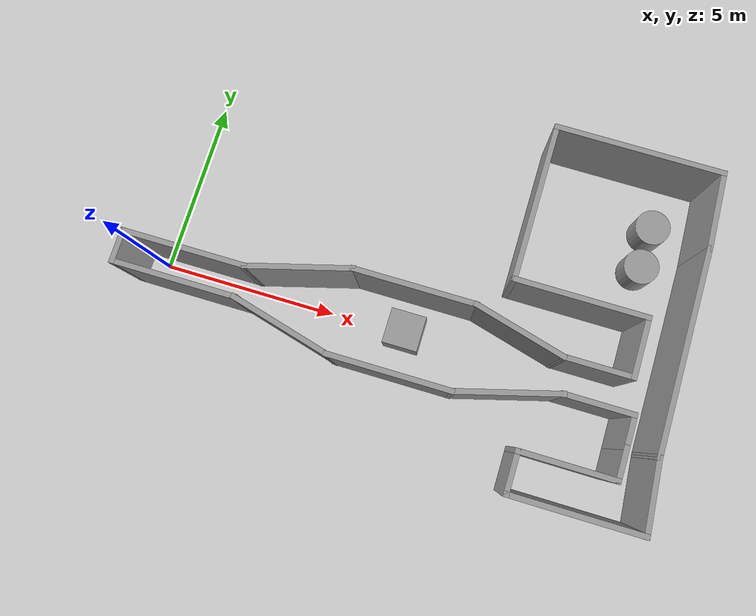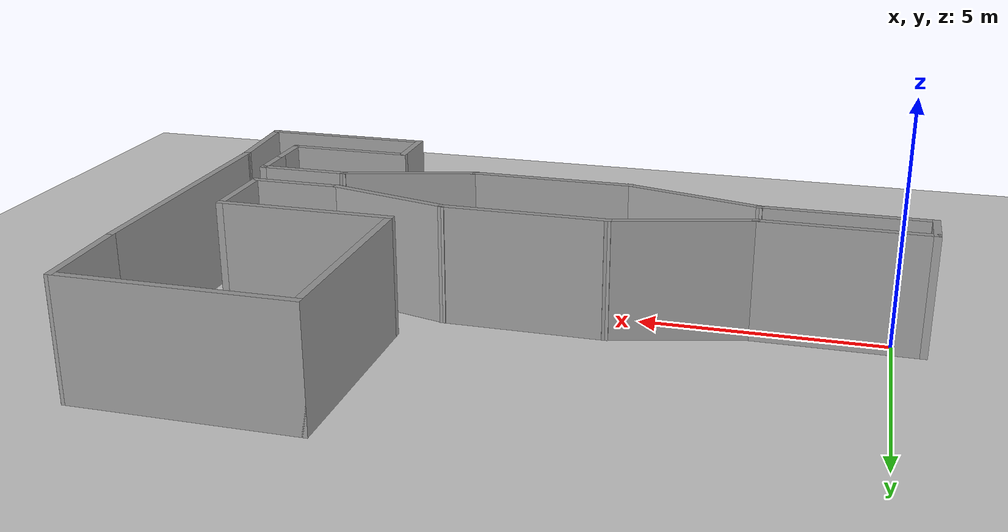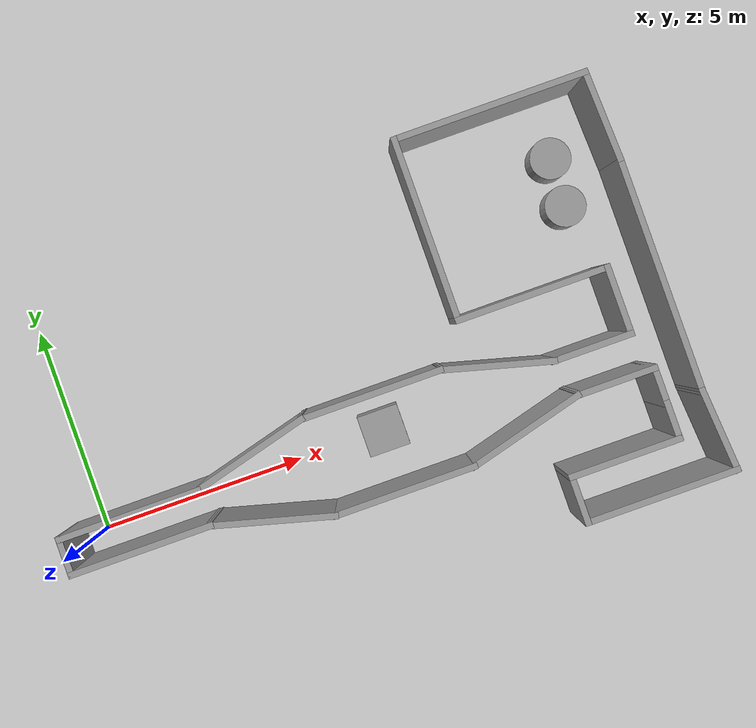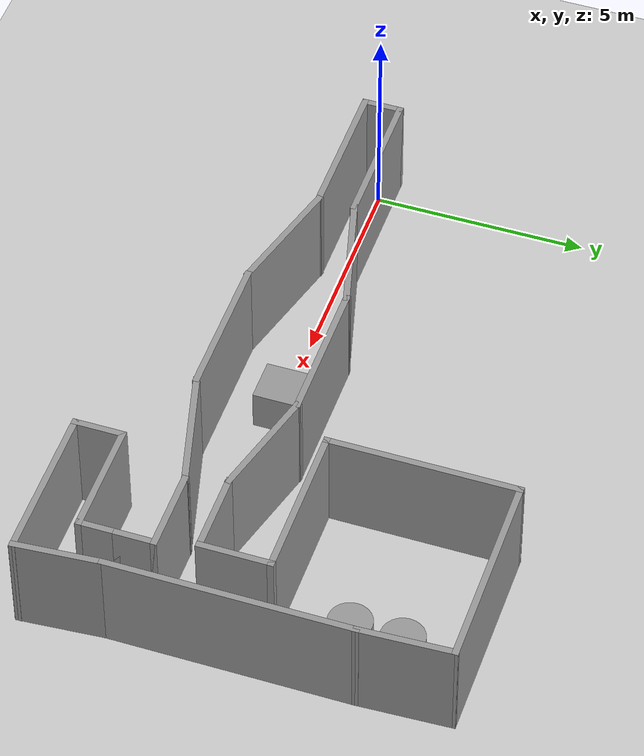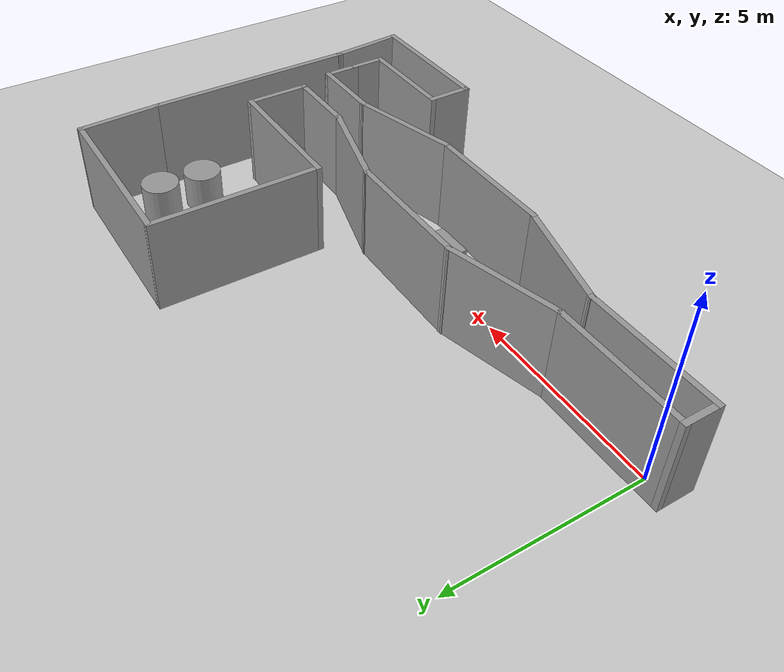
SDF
<sdf version="1.7">
 <world name="default">
  <light name="sun" type="directional">
   <pose>0 0 10 0 -0 0</pose>
   <diffuse>0.8 0.8 0.8 1</diffuse>
   <specular>0.2 0.2 0.2 1</specular>
   <attenuation>
    <range>1000</range>
    <constant>0.9</constant>
    <linear>0.01</linear>
    <quadratic>0.001</quadratic>
   </attenuation>
   <direction>-0.5 0.1 -0.9</direction>
   <spot><inner_angle>0</inner_angle><outer_angle>0</outer_angle><falloff>0</falloff></spot>
  </light>
  <model name="ground_plane">
   <static>1</static>
   <link name="link">
    <collision name="collision">
     <geometry><plane><normal>0 0 1</normal><size>100 100</size></plane></geometry>
     <surface>
      <contact><collide_bitmask>65535</collide_bitmask></contact>
      <friction><ode><mu>100</mu><mu2>50</mu2></ode></friction>
     </surface>
    </collision>
    <visual name="visual">
     <cast_shadows>0</cast_shadows>
     <geometry><plane><normal>0 0 1</normal><size>100 100</size></plane></geometry>
     <material>
      <script><uri>file://media/materials/scripts/gazebo.material</uri><name>Gazebo/Grey</name></script>
     </material>
    </visual>
   </link>
  </model>
  <gravity>0 0 -9.8</gravity>
  <magnetic_field>6e-06 2.3e-05 -4.2e-05</magnetic_field>
  <atmosphere type="adiabatic"/>
  <physics type="ode">
   <max_step_size>0.001</max_step_size>
   <real_time_factor>1</real_time_factor>
   <real_time_update_rate>1000</real_time_update_rate>
  </physics>
  <scene><ambient>0.4 0.4 0.4 1</ambient><background>0.7 0.7 0.7 1</background><shadows>1</shadows></scene>
  <spherical_coordinates>
   <surface_model>EARTH_WGS84</surface_model>
   <latitude_deg>0</latitude_deg>
   <longitude_deg>0</longitude_deg>
   <elevation>0</elevation>
   <heading_deg>0</heading_deg>
  </spherical_coordinates>
  <model name="percorso2">
   <pose>6.92478 1.47041 0 0 -0 0</pose>
   <link name="Wall_0">
    <collision name="Wall_0_Collision">
     <geometry><box><size>1 0.15 2.5</size></box></geometry>
     <pose>0 0 1.25 0 -0 0</pose>
    </collision>
    <visual name="Wall_0_Visual">
     <pose>0 0 1.25 0 -0 0</pose>
     <geometry><box><size>1 0.15 2.5</size></box></geometry>
     <material>
      <script><uri>file://media/materials/scripts/gazebo.material</uri><name>Gazebo/Grey</name></script>
      <ambient>1 1 1 1</ambient>
     </material>
     <meta><layer>0</layer></meta>
    </visual>
    <pose>-7.53065 -1.60617 0 0 -0 -1.5708</pose>
   </link>
   <link name="Wall_1">
    <collision name="Wall_1_Collision">
     <geometry><box><size>3.5 0.15 2.5</size></box></geometry>
     <pose>0 0 1.25 0 -0 0</pose>
    </collision>
    <visual name="Wall_1_Visual">
     <pose>0 0 1.25 0 -0 0</pose>
     <geometry><box><size>3.5 0.15 2.5</size></box></geometry>
     <material>
      <script><uri>file://media/materials/scripts/gazebo.material</uri><name>Gazebo/Grey</name></script>
      <ambient>1 1 1 1</ambient>
     </material>
     <meta><layer>0</layer></meta>
    </visual>
    <pose>-5.85565 -2.03117 0 0 -0 0</pose>
   </link>
   <link name="Wall_10">
    <collision name="Wall_10_Collision">
     <geometry><box><size>3.5 0.15 2.5</size></box></geometry>
     <pose>0 0 1.25 0 -0 0</pose>
    </collision>
    <visual name="Wall_10_Visual">
     <pose>0 0 1.25 0 -0 0</pose>
     <geometry><box><size>3.5 0.15 2.5</size></box></geometry>
     <material>
      <script><uri>file://media/materials/scripts/gazebo.material</uri><name>Gazebo/Grey</name></script>
      <ambient>1 1 1 1</ambient>
     </material>
     <meta><layer>0</layer></meta>
    </visual>
    <pose>-5.85565 -1.18117 0 0 -0 0</pose>
   </link>
   <link name="Wall_11">
    <collision name="Wall_11_Collision">
     <geometry><box><size>3 0.15 2.5</size></box></geometry>
     <pose>0 0 1.25 0 -0 0</pose>
    </collision>
    <visual name="Wall_11_Visual">
     <pose>0 0 1.25 0 -0 0</pose>
     <geometry><box><size>3 0.15 2.5</size></box></geometry>
     <material>
      <script><uri>file://media/materials/scripts/gazebo.material</uri><name>Gazebo/Grey</name></script>
      <ambient>1 1 1 1</ambient>
     </material>
     <meta><layer>0</layer></meta>
    </visual>
    <pose>-2.80421 -0.812355 0 0 -0 0.261799</pose>
   </link>
   <link name="Wall_12">
    <collision name="Wall_12_Collision">
     <geometry><box><size>3.5 0.15 2.5</size></box></geometry>
     <pose>0 0 1.25 0 -0 0</pose>
    </collision>
    <visual name="Wall_12_Visual">
     <pose>0 0 1.25 0 -0 0</pose>
     <geometry><box><size>3.5 0.15 2.5</size></box></geometry>
     <material>
      <script><uri>file://media/materials/scripts/gazebo.material</uri><name>Gazebo/Grey</name></script>
      <ambient>1 1 1 1</ambient>
     </material>
     <meta><layer>0</layer></meta>
    </visual>
    <pose>0.247234 -0.443538 0 0 -0 0</pose>
   </link>
   <link name="Wall_13">
    <collision name="Wall_13_Collision">
     <geometry><box><size>2.75 0.15 2.5</size></box></geometry>
     <pose>0 0 1.25 0 -0 0</pose>
    </collision>
    <visual name="Wall_13_Visual">
     <pose>0 0 1.25 0 -0 0</pose>
     <geometry><box><size>2.75 0.15 2.5</size></box></geometry>
     <material>
      <script><uri>file://media/materials/scripts/gazebo.material</uri><name>Gazebo/Grey</name></script>
      <ambient>1 1 1 1</ambient>
     </material>
     <meta><layer>0</layer></meta>
    </visual>
    <pose>3.17794 -0.780003 0 0 -0 -0.261799</pose>
   </link>
   <link name="Wall_14">
    <collision name="Wall_14_Collision">
     <geometry><box><size>2 0.15 2.5</size></box></geometry>
     <pose>0 0 1.25 0 -0 0</pose>
    </collision>
    <visual name="Wall_14_Visual">
     <pose>0 0 1.25 0 -0 0</pose>
     <geometry><box><size>2 0.15 2.5</size></box></geometry>
     <material>
      <script><uri>file://media/materials/scripts/gazebo.material</uri><name>Gazebo/Grey</name></script>
      <ambient>1 1 1 1</ambient>
     </material>
     <meta><layer>0</layer></meta>
    </visual>
    <pose>5.35864 -1.11647 0 0 -0 0</pose>
   </link>
   <link name="Wall_15">
    <collision name="Wall_15_Collision">
     <geometry><box><size>1.75 0.15 2.5</size></box></geometry>
     <pose>0 0 1.25 0 -0 0</pose>
    </collision>
    <visual name="Wall_15_Visual">
     <pose>0 0 1.25 0 -0 0</pose>
     <geometry><box><size>1.75 0.15 2.5</size></box></geometry>
     <material>
      <script><uri>file://media/materials/scripts/gazebo.material</uri><name>Gazebo/Grey</name></script>
      <ambient>1 1 1 1</ambient>
     </material>
     <meta><layer>0</layer></meta>
    </visual>
    <pose>6.28364 -0.316467 0 0 -0 1.5708</pose>
   </link>
   <link name="Wall_16">
    <collision name="Wall_16_Collision">
     <geometry><box><size>3.75 0.15 2.5</size></box></geometry>
     <pose>0 0 1.25 0 -0 0</pose>
    </collision>
    <visual name="Wall_16_Visual">
     <pose>0 0 1.25 0 -0 0</pose>
     <geometry><box><size>3.75 0.15 2.5</size></box></geometry>
     <material>
      <script><uri>file://media/materials/scripts/gazebo.material</uri><name>Gazebo/Grey</name></script>
      <ambient>1 1 1 1</ambient>
     </material>
     <meta><layer>0</layer></meta>
    </visual>
    <pose>4.48364 0.483532 0 0 -0 3.14159</pose>
   </link>
   <link name="Wall_17">
    <collision name="Wall_17_Collision">
     <geometry><box><size>4.5 0.15 2.5</size></box></geometry>
     <pose>0 0 1.25 0 -0 0</pose>
    </collision>
    <visual name="Wall_17_Visual">
     <pose>0 0 1.25 0 -0 0</pose>
     <geometry><box><size>4.5 0.15 2.5</size></box></geometry>
     <material>
      <script><uri>file://media/materials/scripts/gazebo.material</uri><name>Gazebo/Grey</name></script>
      <ambient>1 1 1 1</ambient>
     </material>
     <meta><layer>0</layer></meta>
    </visual>
    <pose>2.68364 2.65853 0 0 -0 1.5708</pose>
   </link>
   <link name="Wall_18">
    <collision name="Wall_18_Collision">
     <geometry><box><size>4.75 0.15 2.5</size></box></geometry>
     <pose>0 0 1.25 0 -0 0</pose>
    </collision>
    <visual name="Wall_18_Visual">
     <pose>0 0 1.25 0 -0 0</pose>
     <geometry><box><size>4.75 0.15 2.5</size></box></geometry>
     <material>
      <script><uri>file://media/materials/scripts/gazebo.material</uri><name>Gazebo/Grey</name></script>
      <ambient>1 1 1 1</ambient>
     </material>
     <meta><layer>0</layer></meta>
    </visual>
    <pose>4.98364 4.83353 0 0 -0 0</pose>
   </link>
   <link name="Wall_19">
    <collision name="Wall_19_Collision">
     <geometry><box><size>2.26668 0.15 2.5</size></box></geometry>
     <pose>0 0 1.25 0 -0 0</pose>
    </collision>
    <visual name="Wall_19_Visual">
     <pose>0 0 1.25 0 -0 0</pose>
     <geometry><box><size>2.26668 0.15 2.5</size></box></geometry>
     <material>
      <script><uri>file://media/materials/scripts/gazebo.material</uri><name>Gazebo/Grey</name></script>
      <ambient>1 1 1 1</ambient>
     </material>
     <meta><layer>0</layer></meta>
    </visual>
    <pose>7.32938 3.77618 0 0 -0 -1.52756</pose>
   </link>
   <link name="Wall_2">
    <collision name="Wall_2_Collision">
     <geometry><box><size>3 0.15 2.5</size></box></geometry>
     <pose>0 0 1.25 0 -0 0</pose>
    </collision>
    <visual name="Wall_2_Visual">
     <pose>0 0 1.25 0 -0 0</pose>
     <geometry><box><size>3 0.15 2.5</size></box></geometry>
     <material>
      <script><uri>file://media/materials/scripts/gazebo.material</uri><name>Gazebo/Grey</name></script>
      <ambient>1 1 1 1</ambient>
     </material>
     <meta><layer>0</layer></meta>
    </visual>
    <pose>-2.80421 -2.39999 0 0 -0 -0.261799</pose>
   </link>
   <link name="Wall_21">
    <collision name="Wall_21_Collision">
     <geometry><box><size>1 0.15 2.5</size></box></geometry>
     <pose>0 0 1.25 0 -0 0</pose>
    </collision>
    <visual name="Wall_21_Visual">
     <pose>0 0 1.25 0 -0 0</pose>
     <geometry><box><size>1 0.15 2.5</size></box></geometry>
     <material>
      <script><uri>file://media/materials/scripts/gazebo.material</uri><name>Gazebo/Grey</name></script>
      <ambient>1 1 1 1</ambient>
     </material>
     <meta><layer>0</layer></meta>
    </visual>
    <pose>6.52512 -3.30617 0 0 -0 -1.5708</pose>
   </link>
   <link name="Wall_22">
    <collision name="Wall_22_Collision">
     <geometry><box><size>2.75 0.15 2.5</size></box></geometry>
     <pose>0 0 1.25 0 -0 0</pose>
    </collision>
    <visual name="Wall_22_Visual">
     <pose>0 0 1.25 0 -0 0</pose>
     <geometry><box><size>2.75 0.15 2.5</size></box></geometry>
     <material>
      <script><uri>file://media/materials/scripts/gazebo.material</uri><name>Gazebo/Grey</name></script>
      <ambient>1 1 1 1</ambient>
     </material>
     <meta><layer>0</layer></meta>
    </visual>
    <pose>5.22512 -3.73117 0 0 -0 3.14159</pose>
   </link>
   <link name="Wall_23">
    <collision name="Wall_23_Collision">
     <geometry><box><size>1.25 0.15 2.5</size></box></geometry>
     <pose>0 0 1.25 0 -0 0</pose>
    </collision>
    <visual name="Wall_23_Visual">
     <pose>0 0 1.25 0 -0 0</pose>
     <geometry><box><size>1.25 0.15 2.5</size></box></geometry>
     <material>
      <script><uri>file://media/materials/scripts/gazebo.material</uri><name>Gazebo/Grey</name></script>
      <ambient>1 1 1 1</ambient>
     </material>
     <meta><layer>0</layer></meta>
    </visual>
    <pose>3.92512 -4.28117 0 0 -0 -1.5708</pose>
   </link>
   <link name="Wall_24">
    <collision name="Wall_24_Collision">
     <geometry><box><size>3.75 0.15 2.5</size></box></geometry>
     <pose>0 0 1.25 0 -0 0</pose>
    </collision>
    <visual name="Wall_24_Visual">
     <pose>0 0 1.25 0 -0 0</pose>
     <geometry><box><size>3.75 0.15 2.5</size></box></geometry>
     <material>
      <script><uri>file://media/materials/scripts/gazebo.material</uri><name>Gazebo/Grey</name></script>
      <ambient>1 1 1 1</ambient>
     </material>
     <meta><layer>0</layer></meta>
    </visual>
    <pose>5.72512 -4.83117 0 0 -0 0</pose>
   </link>
   <link name="Wall_25">
    <collision name="Wall_25_Collision">
     <geometry><box><size>2.10576 0.15 2.5</size></box></geometry>
     <pose>0 0 1.25 0 -0 0</pose>
    </collision>
    <visual name="Wall_25_Visual">
     <pose>0 0 1.25 0 -0 0</pose>
     <geometry><box><size>2.10576 0.15 2.5</size></box></geometry>
     <material>
      <script><uri>file://media/materials/scripts/gazebo.material</uri><name>Gazebo/Grey</name></script>
      <ambient>1 1 1 1</ambient>
     </material>
     <meta><layer>0</layer></meta>
    </visual>
    <pose>7.45012 -3.85617 0 0 -0 1.64757</pose>
   </link>
   <link name="Wall_3">
    <collision name="Wall_3_Collision">
     <geometry><box><size>3.5 0.15 2.5</size></box></geometry>
     <pose>0 0 1.25 0 -0 0</pose>
    </collision>
    <visual name="Wall_3_Visual">
     <pose>0 0 1.25 0 -0 0</pose>
     <geometry><box><size>3.5 0.15 2.5</size></box></geometry>
     <material>
      <script><uri>file://media/materials/scripts/gazebo.material</uri><name>Gazebo/Grey</name></script>
      <ambient>1 1 1 1</ambient>
     </material>
     <meta><layer>0</layer></meta>
    </visual>
    <pose>0.247234 -2.76881 0 0 -0 0</pose>
   </link>
   <link name="Wall_4">
    <collision name="Wall_4_Collision">
     <geometry><box><size>3 0.15 2.5</size></box></geometry>
     <pose>0 0 1.25 0 -0 0</pose>
    </collision>
    <visual name="Wall_4_Visual">
     <pose>0 0 1.25 0 -0 0</pose>
     <geometry><box><size>3 0.15 2.5</size></box></geometry>
     <material>
      <script><uri>file://media/materials/scripts/gazebo.material</uri><name>Gazebo/Grey</name></script>
      <ambient>1 1 1 1</ambient>
     </material>
     <meta><layer>0</layer></meta>
    </visual>
    <pose>3.29868 -2.39999 0 0 -0 0.261799</pose>
   </link>
   <link name="Wall_5">
    <collision name="Wall_5_Collision">
     <geometry><box><size>2 0.15 2.5</size></box></geometry>
     <pose>0 0 1.25 0 -0 0</pose>
    </collision>
    <visual name="Wall_5_Visual">
     <pose>0 0 1.25 0 -0 0</pose>
     <geometry><box><size>2 0.15 2.5</size></box></geometry>
     <material>
      <script><uri>file://media/materials/scripts/gazebo.material</uri><name>Gazebo/Grey</name></script>
      <ambient>1 1 1 1</ambient>
     </material>
     <meta><layer>0</layer></meta>
    </visual>
    <pose>5.60012 -2.03117 0 0 -0 0</pose>
   </link>
   <link name="Wall_6">
    <collision name="Wall_6_Collision">
     <geometry><box><size>1 0.15 2.5</size></box></geometry>
     <pose>0 0 1.25 0 -0 0</pose>
    </collision>
    <visual name="Wall_6_Visual">
     <pose>0 0 1.25 0 -0 0</pose>
     <geometry><box><size>1 0.15 2.5</size></box></geometry>
     <material>
      <script><uri>file://media/materials/scripts/gazebo.material</uri><name>Gazebo/Grey</name></script>
      <ambient>1 1 1 1</ambient>
     </material>
     <meta><layer>0</layer></meta>
    </visual>
    <pose>6.52512 -2.45617 0 0 -0 -1.5708</pose>
   </link>
   <link name="Wall_8">
    <collision name="Wall_8_Collision">
     <geometry><box><size>5.75 0.15 2.5</size></box></geometry>
     <pose>0 0 1.25 0 -0 0</pose>
    </collision>
    <visual name="Wall_8_Visual">
     <pose>0 0 1.25 0 -0 0</pose>
     <geometry><box><size>5.75 0.15 2.5</size></box></geometry>
     <material>
      <script><uri>file://media/materials/scripts/gazebo.material</uri><name>Gazebo/Grey</name></script>
      <ambient>1 1 1 1</ambient>
     </material>
     <meta><layer>0</layer></meta>
    </visual>
    <pose>7.37512 -0.081172 0 0 -0 1.5708</pose>
   </link>
   <static>1</static>
  </model>
  <model name="unit_box">
   <pose>7.14813 0.045573 0.499995 0 1e-05 0</pose>
   <link name="link">
    <inertial>
     <mass>1</mass>
     <inertia>
      <ixx>0.166667</ixx>
      <ixy>0</ixy>
      <ixz>0</ixz>
      <iyy>0.166667</iyy>
      <iyz>0</iyz>
      <izz>0.166667</izz>
     </inertia>
    </inertial>
    <collision name="collision"><geometry><box><size>1 1 1</size></box></geometry></collision>
    <visual name="visual">
     <geometry><box><size>1 1 1</size></box></geometry>
     <material>
      <script><name>Gazebo/Grey</name><uri>file://media/materials/scripts/gazebo.material</uri></script>
     </material>
    </visual>
   </link>
  </model>
  <model name="unit_cylinder">
   <pose>13.0103 3.63048 0.499993 -3e-06 -4e-06 -0</pose>
   <link name="link">
    <inertial>
     <mass>1</mass>
     <inertia><ixx>0.145833</ixx><ixy>0</ixy><ixz>0</ixz><iyy>0.145833</iyy><iyz>0</iyz><izz>0.125</izz></inertia>
    </inertial>
    <collision name="collision">
     <geometry><cylinder><radius>0.5</radius><length>1</length></cylinder></geometry>
    </collision>
    <visual name="visual">
     <geometry><cylinder><radius>0.5</radius><length>1</length></cylinder></geometry>
     <material>
      <script><name>Gazebo/Grey</name><uri>file://media/materials/scripts/gazebo.material</uri></script>
     </material>
    </visual>
   </link>
  </model>
  <model name="unit_cylinder_0">
   <pose>13.0481 4.8155 0.499997 3e-06 4e-06 -0</pose>
   <link name="link">
    <inertial>
     <mass>1</mass>
     <inertia><ixx>0.145833</ixx><ixy>0</ixy><ixz>0</ixz><iyy>0.145833</iyy><iyz>0</iyz><izz>0.125</izz></inertia>
    </inertial>
    <collision name="collision">
     <geometry><cylinder><radius>0.5</radius><length>1</length></cylinder></geometry>
    </collision>
    <visual name="visual">
     <geometry><cylinder><radius>0.5</radius><length>1</length></cylinder></geometry>
     <material>
      <script><name>Gazebo/Grey</name><uri>file://media/materials/scripts/gazebo.material</uri></script>
     </material>
    </visual>
   </link>
  </model>
 </world>
</sdf>
